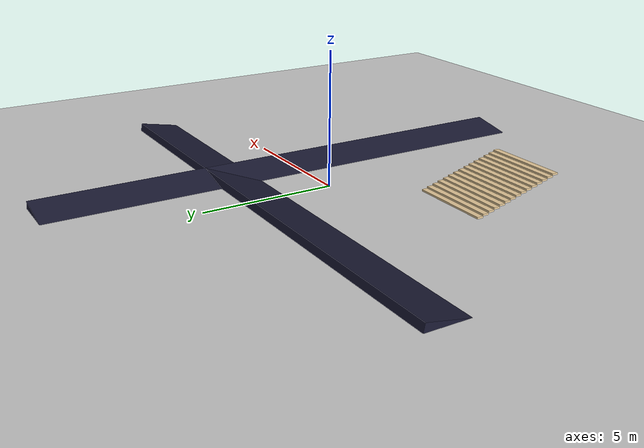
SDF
<sdf version="1.6">
 <world name="default">
  <light name="sun" type="directional">
   <pose>0 0 10 0 -0 0</pose>
   <diffuse>0.8 0.8 0.8 1</diffuse>
   <specular>0.1 0.1 0.1 1</specular>
   <attenuation>
    <range>1000</range>
    <constant>0.9</constant>
    <linear>0.01</linear>
    <quadratic>0.001</quadratic>
   </attenuation>
   <direction>-0.5 0.5 -1</direction>
  </light>
  <model name="ground_plane">
   <static>1</static>
   <link name="link">
    <collision name="collision">
     <geometry><plane><normal>0 0 1</normal><size>100 100</size></plane></geometry>
     <surface><friction><ode><mu>100</mu><mu2>50</mu2></ode></friction></surface>
    </collision>
    <visual name="visual">
     <cast_shadows>0</cast_shadows>
     <geometry><plane><normal>0 0 1</normal><size>100 100</size></plane></geometry>
     <material>
      <script><uri>file://media/materials/scripts/gazebo.material</uri><name>Gazebo/Grey</name></script>
     </material>
    </visual>
   </link>
  </model>
  <gravity>0 0 -9.8</gravity>
  <magnetic_field>6e-06 2.3e-05 -4.2e-05</magnetic_field>
  <atmosphere type="adiabatic"/>
  <physics name="default_physics" default="0" type="ode">
   <max_step_size>0.001</max_step_size>
   <real_time_factor>1</real_time_factor>
   <real_time_update_rate>1000</real_time_update_rate>
  </physics>
  <scene><ambient>0.4 0.4 0.4 1</ambient><background>0.7 0.7 0.7 1</background><shadows>1</shadows></scene>
  <spherical_coordinates>
   <surface_model>EARTH_WGS84</surface_model>
   <latitude_deg>0</latitude_deg>
   <longitude_deg>0</longitude_deg>
   <elevation>0</elevation>
   <heading_deg>0</heading_deg>
  </spherical_coordinates>
  <model name="box">
   <static>true</static>
   <pose>2 0 -0.5 0 1.378810109 0</pose>
   <link name="link">
    <collision name="collision"><geometry><box><size>1 20 3</size></box></geometry></collision>
    <visual name="visual">
     <geometry><box><size>1 20 3</size></box></geometry>
     <material>
      <ambient>0.8 0.27 0 1</ambient>
      <diffuse>0.1 0.1 0.2 1</diffuse>
      <specular>0 0 0 0</specular>
      <emissive>0 0 0 1</emissive>
     </material>
    </visual>
   </link>
  </model>
  <model name="box2">
   <static>true</static>
   <pose>0 2 -0.5 0 1.378810109 1.57</pose>
   <link name="link">
    <collision name="collision"><geometry><box><size>1 20 3</size></box></geometry></collision>
    <visual name="visual">
     <geometry><box><size>1 20 3</size></box></geometry>
     <material>
      <ambient>0.8 0.27 0 1</ambient>
      <diffuse>0.1 0.1 0.2 1</diffuse>
      <specular>0 0 0 0</specular>
      <emissive>0 0 0 1</emissive>
     </material>
    </visual>
   </link>
  </model>
  <model name="stairs">
   <pose>-2.53 -3.06 0 0 -0 0</pose>
   <link name="Stairs_0">
    <visual name="Stairs_0_Visual_0">
     <pose>-1.03 0.323333 0.033333 0 -0 0</pose>
     <geometry><box><size>3 0.233333 0.066667</size></box></geometry>
     <material>
      <script><uri>file://media/materials/scripts/gazebo.material</uri><name>Gazebo/Grey</name></script>
      <ambient>0.921569 0.807843 0.615686 1</ambient>
     </material>
     <meta><layer>0</layer></meta>
    </visual>
    <collision name="Stairs_0_Collision_0">
     <geometry><box><size>3 0.233333 0.066667</size></box></geometry>
     <pose>-1.03 0.323333 0.033333 0 -0 0</pose>
    </collision>
    <visual name="Stairs_0_Visual_1">
     <pose>-1.03 0.09 0.1 0 -0 0</pose>
     <geometry><box><size>3 0.233333 0.066667</size></box></geometry>
     <material>
      <script><uri>file://media/materials/scripts/gazebo.material</uri><name>Gazebo/Grey</name></script>
      <ambient>0.921569 0.807843 0.615686 1</ambient>
     </material>
     <meta><layer>0</layer></meta>
    </visual>
    <collision name="Stairs_0_Collision_1">
     <geometry><box><size>3 0.233333 0.066667</size></box></geometry>
     <pose>-1.03 0.09 0.1 0 -0 0</pose>
    </collision>
    <visual name="Stairs_0_Visual_2">
     <pose>-1.03 -0.143333 0.166667 0 -0 0</pose>
     <geometry><box><size>3 0.233333 0.066667</size></box></geometry>
     <material>
      <script><uri>file://media/materials/scripts/gazebo.material</uri><name>Gazebo/Grey</name></script>
      <ambient>0.921569 0.807843 0.615686 1</ambient>
     </material>
     <meta><layer>0</layer></meta>
    </visual>
    <collision name="Stairs_0_Collision_2">
     <geometry><box><size>3 0.233333 0.066667</size></box></geometry>
     <pose>-1.03 -0.143333 0.166667 0 -0 0</pose>
    </collision>
    <visual name="Stairs_0_Visual_3">
     <pose>-1.03 -0.376667 0.233333 0 -0 0</pose>
     <geometry><box><size>3 0.233333 0.066667</size></box></geometry>
     <material>
      <script><uri>file://media/materials/scripts/gazebo.material</uri><name>Gazebo/Grey</name></script>
      <ambient>0.921569 0.807843 0.615686 1</ambient>
     </material>
     <meta><layer>0</layer></meta>
    </visual>
    <collision name="Stairs_0_Collision_3">
     <geometry><box><size>3 0.233333 0.066667</size></box></geometry>
     <pose>-1.03 -0.376667 0.233333 0 -0 0</pose>
    </collision>
    <visual name="Stairs_0_Visual_4">
     <pose>-1.03 -0.61 0.3 0 -0 0</pose>
     <geometry><box><size>3 0.233333 0.066667</size></box></geometry>
     <material>
      <script><uri>file://media/materials/scripts/gazebo.material</uri><name>Gazebo/Grey</name></script>
      <ambient>0.921569 0.807843 0.615686 1</ambient>
     </material>
     <meta><layer>0</layer></meta>
    </visual>
    <collision name="Stairs_0_Collision_4">
     <geometry><box><size>3 0.233333 0.066667</size></box></geometry>
     <pose>-1.03 -0.61 0.3 0 -0 0</pose>
    </collision>
    <visual name="Stairs_0_Visual_5">
     <pose>-1.03 -0.843333 0.366667 0 -0 0</pose>
     <geometry><box><size>3 0.233333 0.066667</size></box></geometry>
     <material>
      <script><uri>file://media/materials/scripts/gazebo.material</uri><name>Gazebo/Grey</name></script>
      <ambient>0.921569 0.807843 0.615686 1</ambient>
     </material>
     <meta><layer>0</layer></meta>
    </visual>
    <collision name="Stairs_0_Collision_5">
     <geometry><box><size>3 0.233333 0.066667</size></box></geometry>
     <pose>-1.03 -0.843333 0.366667 0 -0 0</pose>
    </collision>
    <visual name="Stairs_0_Visual_6">
     <pose>-1.03 -1.07667 0.433333 0 -0 0</pose>
     <geometry><box><size>3 0.233333 0.066667</size></box></geometry>
     <material>
      <script><uri>file://media/materials/scripts/gazebo.material</uri><name>Gazebo/Grey</name></script>
      <ambient>0.921569 0.807843 0.615686 1</ambient>
     </material>
     <meta><layer>0</layer></meta>
    </visual>
    <collision name="Stairs_0_Collision_6">
     <geometry><box><size>3 0.233333 0.066667</size></box></geometry>
     <pose>-1.03 -1.07667 0.433333 0 -0 0</pose>
    </collision>
    <visual name="Stairs_0_Visual_7">
     <pose>-1.03 -1.31 0.5 0 -0 0</pose>
     <geometry><box><size>3 0.233333 0.066667</size></box></geometry>
     <material>
      <script><uri>file://media/materials/scripts/gazebo.material</uri><name>Gazebo/Grey</name></script>
      <ambient>0.921569 0.807843 0.615686 1</ambient>
     </material>
     <meta><layer>0</layer></meta>
    </visual>
    <collision name="Stairs_0_Collision_7">
     <geometry><box><size>3 0.233333 0.066667</size></box></geometry>
     <pose>-1.03 -1.31 0.5 0 -0 0</pose>
    </collision>
    <visual name="Stairs_0_Visual_8">
     <pose>-1.03 -1.54333 0.566667 0 -0 0</pose>
     <geometry><box><size>3 0.233333 0.066667</size></box></geometry>
     <material>
      <script><uri>file://media/materials/scripts/gazebo.material</uri><name>Gazebo/Grey</name></script>
      <ambient>0.921569 0.807843 0.615686 1</ambient>
     </material>
     <meta><layer>0</layer></meta>
    </visual>
    <collision name="Stairs_0_Collision_8">
     <geometry><box><size>3 0.233333 0.066667</size></box></geometry>
     <pose>-1.03 -1.54333 0.566667 0 -0 0</pose>
    </collision>
    <visual name="Stairs_0_Visual_9">
     <pose>-1.03 -1.77667 0.633333 0 -0 0</pose>
     <geometry><box><size>3 0.233333 0.066667</size></box></geometry>
     <material>
      <script><uri>file://media/materials/scripts/gazebo.material</uri><name>Gazebo/Grey</name></script>
      <ambient>0.921569 0.807843 0.615686 1</ambient>
     </material>
     <meta><layer>0</layer></meta>
    </visual>
    <collision name="Stairs_0_Collision_9">
     <geometry><box><size>3 0.233333 0.066667</size></box></geometry>
     <pose>-1.03 -1.77667 0.633333 0 -0 0</pose>
    </collision>
    <visual name="Stairs_0_Visual_10">
     <pose>-1.03 -2.01 0.7 0 -0 0</pose>
     <geometry><box><size>3 0.233333 0.066667</size></box></geometry>
     <material>
      <script><uri>file://media/materials/scripts/gazebo.material</uri><name>Gazebo/Grey</name></script>
      <ambient>0.921569 0.807843 0.615686 1</ambient>
     </material>
     <meta><layer>0</layer></meta>
    </visual>
    <collision name="Stairs_0_Collision_10">
     <geometry><box><size>3 0.233333 0.066667</size></box></geometry>
     <pose>-1.03 -2.01 0.7 0 -0 0</pose>
    </collision>
    <visual name="Stairs_0_Visual_11">
     <pose>-1.03 -2.24333 0.766667 0 -0 0</pose>
     <geometry><box><size>3 0.233333 0.066667</size></box></geometry>
     <material>
      <script><uri>file://media/materials/scripts/gazebo.material</uri><name>Gazebo/Grey</name></script>
      <ambient>0.921569 0.807843 0.615686 1</ambient>
     </material>
     <meta><layer>0</layer></meta>
    </visual>
    <collision name="Stairs_0_Collision_11">
     <geometry><box><size>3 0.233333 0.066667</size></box></geometry>
     <pose>-1.03 -2.24333 0.766667 0 -0 0</pose>
    </collision>
    <visual name="Stairs_0_Visual_12">
     <pose>-1.03 -2.47667 0.833333 0 -0 0</pose>
     <geometry><box><size>3 0.233333 0.066667</size></box></geometry>
     <material>
      <script><uri>file://media/materials/scripts/gazebo.material</uri><name>Gazebo/Grey</name></script>
      <ambient>0.921569 0.807843 0.615686 1</ambient>
     </material>
     <meta><layer>0</layer></meta>
    </visual>
    <collision name="Stairs_0_Collision_12">
     <geometry><box><size>3 0.233333 0.066667</size></box></geometry>
     <pose>-1.03 -2.47667 0.833333 0 -0 0</pose>
    </collision>
    <visual name="Stairs_0_Visual_13">
     <pose>-1.03 -2.71 0.9 0 -0 0</pose>
     <geometry><box><size>3 0.233333 0.066667</size></box></geometry>
     <material>
      <script><uri>file://media/materials/scripts/gazebo.material</uri><name>Gazebo/Grey</name></script>
      <ambient>0.921569 0.807843 0.615686 1</ambient>
     </material>
     <meta><layer>0</layer></meta>
    </visual>
    <collision name="Stairs_0_Collision_13">
     <geometry><box><size>3 0.233333 0.066667</size></box></geometry>
     <pose>-1.03 -2.71 0.9 0 -0 0</pose>
    </collision>
    <visual name="Stairs_0_Visual_14">
     <pose>-1.03 -2.94333 0.966667 0 -0 0</pose>
     <geometry><box><size>3 0.233333 0.066667</size></box></geometry>
     <material>
      <script><uri>file://media/materials/scripts/gazebo.material</uri><name>Gazebo/Grey</name></script>
      <ambient>0.921569 0.807843 0.615686 1</ambient>
     </material>
     <meta><layer>0</layer></meta>
    </visual>
    <collision name="Stairs_0_Collision_14">
     <geometry><box><size>3 0.233333 0.066667</size></box></geometry>
     <pose>-1.03 -2.94333 0.966667 0 -0 0</pose>
    </collision>
   </link>
   <static>1</static>
  </model>
 </world>
</sdf>
